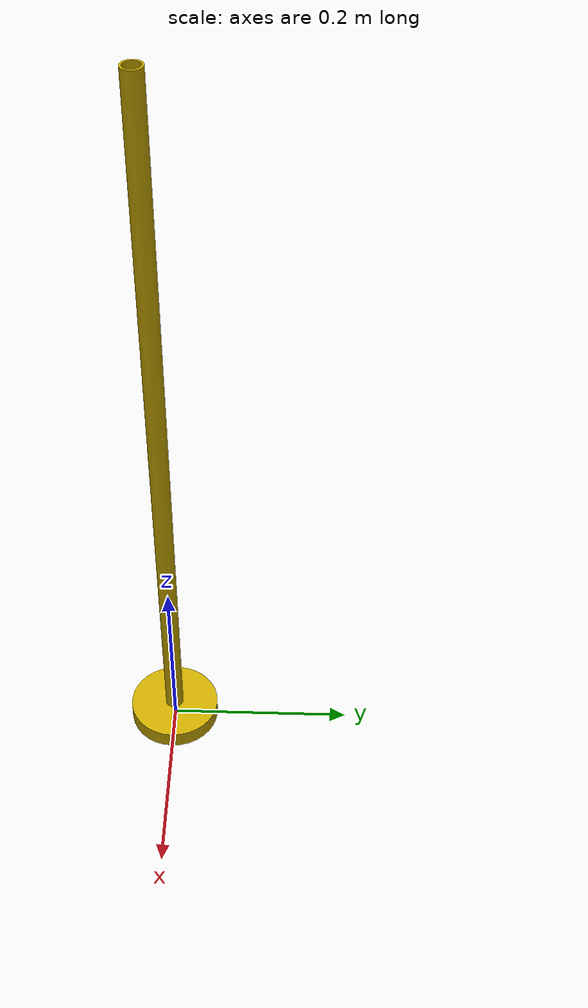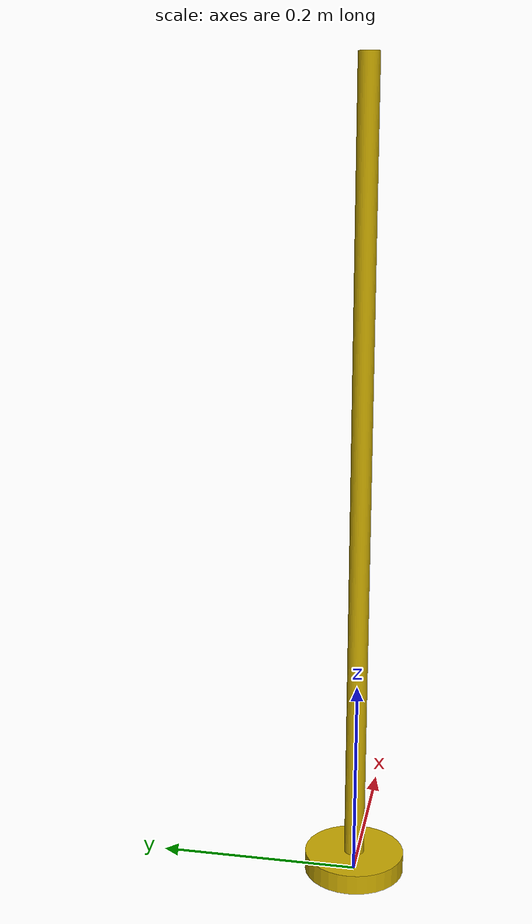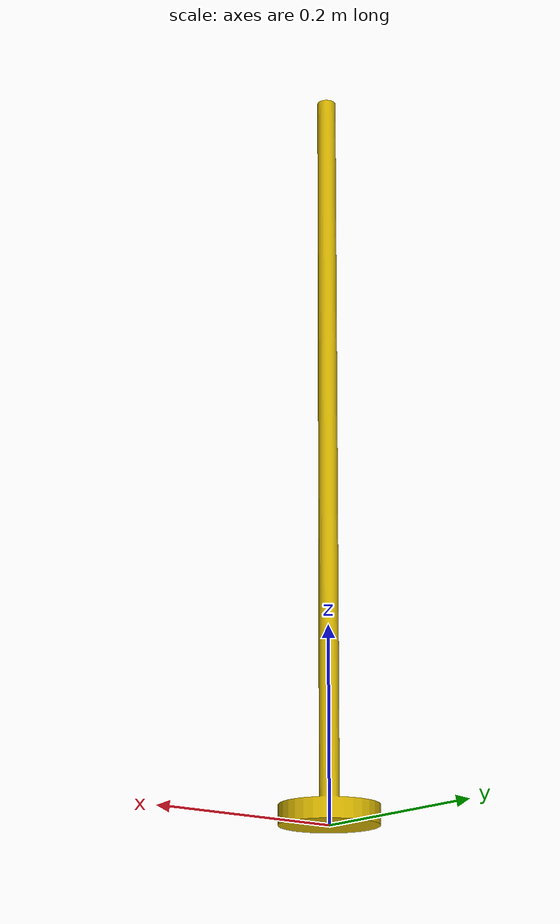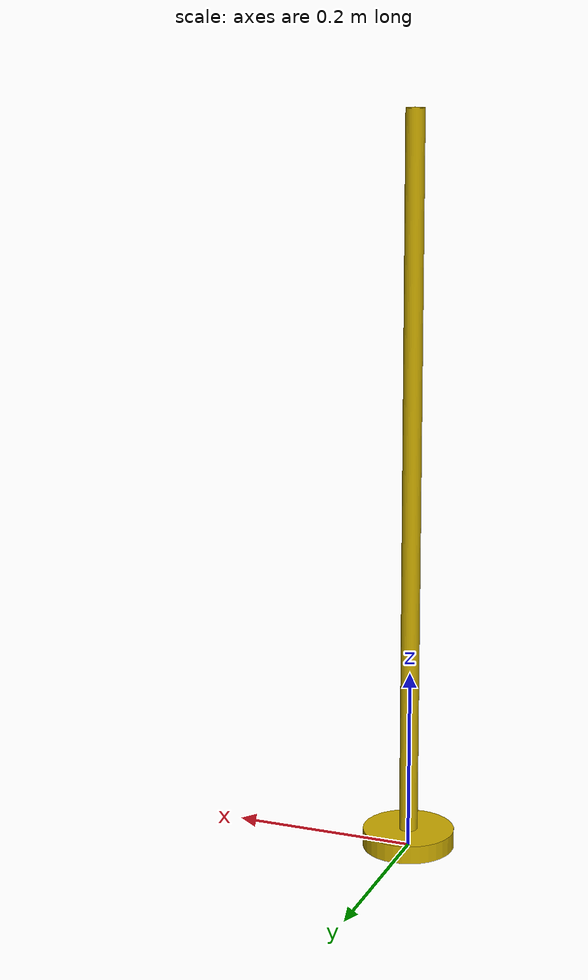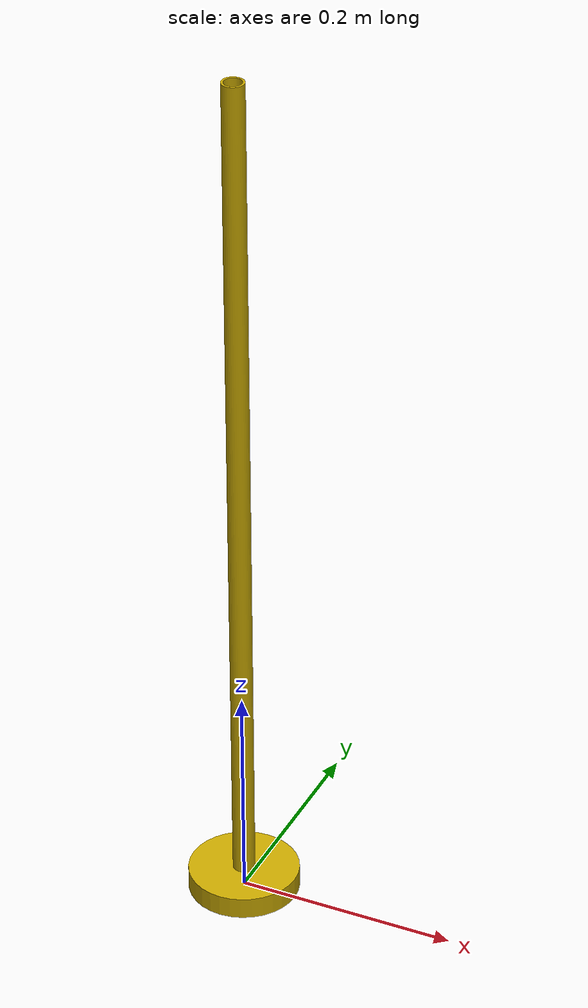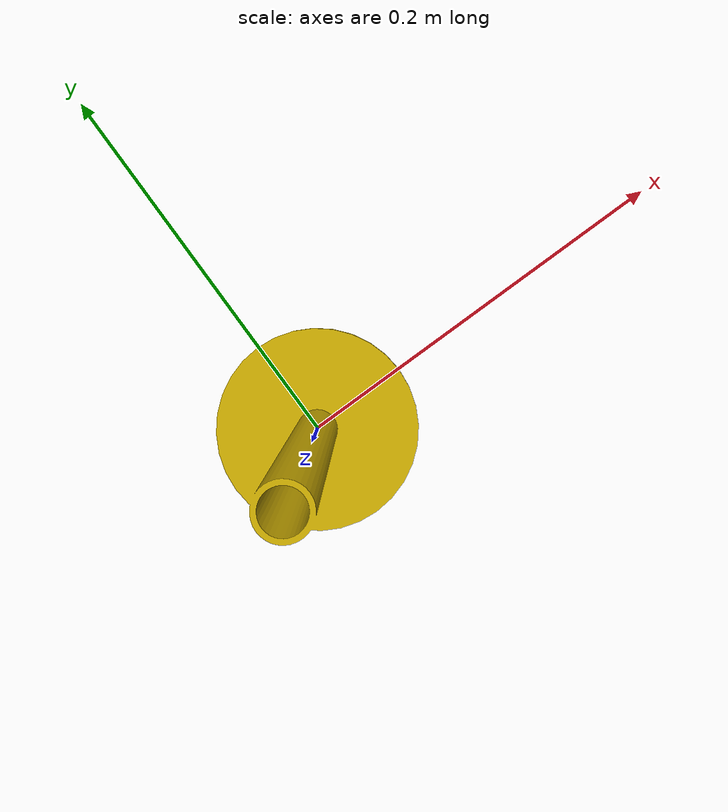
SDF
<?xml version="1.0"?>
<sdf version="1.11">
  <model name="sauvc_yellow_flare">
    <static>false</static>
    <link name="link">
      <collision name="yellow_flare_collision">
        <pose>0 0 0 0 0 0</pose>
        <geometry>
          <mesh>
            <scale>1 1 1</scale>
            <uri>model://sauvc_yellow_flare/yellow_flare.dae</uri>
          </mesh>
        </geometry>
      </collision>
      <collision name="flare">
        <pose>0 0 0.4 0 0 0</pose>
        <geometry>
          <cylinder>
            <radius>0.02</radius>
            <length>0.8</length>
          </cylinder>
        </geometry>
      </collision>
      <visual name="yellow_flare">
        <cast_shadows>false</cast_shadows>
        <pose>0 0 0 0 0 0</pose>
        <geometry>
          <mesh>
            <scale>1 1 1</scale>
            <uri>model://sauvc_yellow_flare/yellow_flare.dae</uri>
          </mesh>
        </geometry>
      </visual>
    </link>
  </model>
</sdf>
